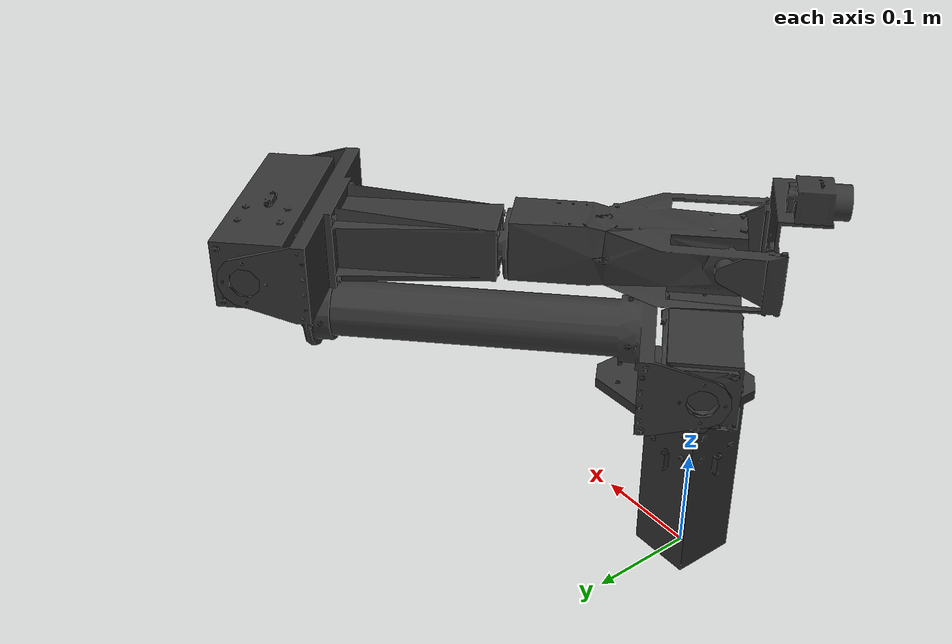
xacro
<?xml version="1.0" ?>
<robot name="hexapod_arm" xmlns:xacro="http://www.ros.org/wiki/xacro">

    <xacro:include filename="$(find arm_description)/urdf/arm.urdf.xacro" />

    <link name="base_link"/>

    <xacro:hexapod_arm parent="base_link" xyz="0 0 0" rpy="0 0 0"/>

    <!-- Fix to floor for gazebo testing -->
    <link name="world"/>
    <joint name="world_joint" type="fixed">
        <parent link="world"/>
        <child link="base_link"/>
        <origin xyz="0 0 0" rpy="0 0 0"/>
    </joint>

    <xacro:include filename="$(find arm_description)/urdf/arm.gazebo.xacro"/>

    <gazebo>
        <plugin name="ros_control" filename="libgazebo_ros_control.so">
          <robotNamespace></robotNamespace>
        </plugin>
    </gazebo>

</robot>

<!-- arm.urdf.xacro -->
<robot xmlns:xacro="http://www.ros.org/wiki/xacro">

    <!-- All meshes are scaled by 0.001 in all dimensions because I exported in mm, ROS uses m-->

    <xacro:macro name="hexapod_arm" params="parent xyz rpy">

        <joint name="arm_attachment" type="fixed">
            <parent link="${parent}"/>
            <child link="arm_link_1"/>
            <origin xyz="${xyz}" rpy="${rpy}"/>
        </joint>

        <link name="arm_link_1">
            <inertial>
                <origin xyz="0.0 0.0 0.0" rpy="0.0 0.0 0.0"/>
                <mass value="0.1"/>
                <inertia ixx="0.001" ixy="0.0" ixz="0.0" iyy="0.001" iyz="0.0" izz="0.001"/>
            </inertial>

            <visual>
                <origin xyz="0 0 0.0" rpy="0.0 0.0 0.0"/>
                <geometry>
                    <mesh filename="package://arm_description/meshes/visual/arm_link_1.stl" scale="0.001 0.001 0.001"/>
                </geometry>
                <material name="Grey">
                    <color rgba="0.2 0.2 0.2 1"/>
                </material>
            </visual>

            <collision>
                <origin xyz="0.0 0.0 0.0" rpy="0.0 0.0 0.0"/>
                <geometry>
                    <mesh filename="package://arm_description/meshes/collision/arm_link_1.stl" scale="0.001 0.001 0.001"/>
                </geometry>
            </collision>
        </link>

        <joint name="arm_joint_1" type="revolute">
            <parent link="arm_link_1"/>
            <child link="arm_link_2"/>
            <origin xyz="0.0 0.0 0.194" rpy="0.0 0.0 ${5*pi/4.0}"/>
            <axis xyz="0 0 1"/>
            <dynamics damping="0"/>
            <dynamics friction="0"/>
            <limit effort="87" velocity="5.6548668" lower="-2.6179939" upper="2.6179939" />
        </joint>

        <link name="arm_link_2">
            <inertial>
                <origin xyz="0.0 0.0 0.0" rpy="0.0 0.0 0.0"/>
                <mass value="0.1"/>
                <inertia ixx="0.001" ixy="0.0" ixz="0.0" iyy="0.001" iyz="0.0" izz="0.001"/>
            </inertial>

            <visual>
                <origin xyz="0.0 0.0 0.0" rpy="0.0 0.0 0.0"/>
                <geometry>
                    <mesh filename="package://arm_description/meshes/visual/arm_link_2.stl" scale="0.001 0.001 0.001"/>
                </geometry>
                <material name="Grey">
                    <color rgba="0.2 0.2 0.2 1"/>
                </material>
            </visual>

            <collision>
                <origin xyz="0.0 0.0 0.0" rpy="0.0 0.0 0.0"/>
                <geometry>
                    <mesh filename="package://arm_description/meshes/collision/arm_link_2.stl" scale="0.001 0.001 0.001"/>
                </geometry>
            </collision>
        </link>

        <joint name="arm_joint_2" type="revolute">
            <parent link="arm_link_2"/>
            <child link="arm_link_3"/>
            <origin xyz="0.0 0.0 0.04" rpy="0.0 0.0 0.0"/>
            <axis xyz="0 1 0"/>
            <dynamics damping="0"/>
            <dynamics friction="0"/>
            <limit effort="87" velocity="5.6548668" lower="-2.6179939" upper="2.6179939" />
        </joint>

        <link name="arm_link_3">
            <inertial>
                <origin xyz="0.0 0.0 0.0" rpy="0.0 0.0 0.0"/>
                <mass value="0.1"/>
                <inertia ixx="0.001" ixy="0.0" ixz="0.0" iyy="0.001" iyz="0.0" izz="0.001"/>
            </inertial>

            <visual>
                <origin xyz="0.0 0.0 0.0" rpy="0.0 0.0 ${pi/2.0}"/>
                <geometry>
                    <mesh filename="package://arm_description/meshes/visual/arm_link_3.stl" scale="0.001 0.001 0.001"/>
                </geometry>
                <material name="Grey">
                    <color rgba="0.2 0.2 0.2 1"/>
                </material>
            </visual>

            <collision>
                <origin xyz="0.0 0.0 0.0" rpy="0.0 0.0 ${pi/2}"/>
                <geometry>
                    <mesh filename="package://arm_description/meshes/collision/arm_link_3.stl" scale="0.001 0.001 0.001"/>
                </geometry>
            </collision>
        </link>

        <joint name="arm_joint_3" type="revolute">
            <parent link="arm_link_3"/>
            <child link="arm_link_4"/>
            <origin xyz="-0.3683 0.014 0.073" rpy="0.0 ${pi} 0.0"/>
            <axis xyz="0 1 0"/>
            <dynamics damping="0"/>
            <dynamics friction="0"/>
            <limit effort="87" velocity="5.6548668" lower="-2.6179939" upper="2.6179939" />
        </joint>

        <link name="arm_link_4">
            <inertial>
                <origin xyz="0.0 0.0 0.0" rpy="0.0 0.0 0.0"/>
                <mass value="0.1"/>
                <inertia ixx="0.001" ixy="0.0" ixz="0.0" iyy="0.001" iyz="0.0" izz="0.001"/>
            </inertial>

            <visual>
                <origin xyz="0.0 0.0 0.0" rpy="0.0 0.0 ${pi/2.0}"/>
                <geometry>
                    <mesh filename="package://arm_description/meshes/visual/arm_link_4.stl" scale="0.001 0.001 0.001"/>
                </geometry>
                <material name="Grey">
                    <color rgba="0.2 0.2 0.2 1"/>
                </material>
            </visual>

            <collision>
                <origin xyz="0.0 0.0 0.0" rpy="0.0 0.0 ${pi/2}"/>
                <geometry>
                    <mesh filename="package://arm_description/meshes/collision/arm_link_4.stl" scale="0.001 0.001 0.001"/>
                </geometry>
            </collision>
        </link>

        <joint name="arm_joint_4" type="revolute">
            <parent link="arm_link_4"/>
            <child link="arm_link_5"/>
            <origin xyz="-0.202 0.0 0.0" rpy="0.0 ${pi} 0.0"/>
            <axis xyz="1 0 0"/>
            <dynamics damping="0"/>
            <dynamics friction="0"/>
            <limit effort="87" velocity="5.6548668" lower="-2.6179939" upper="2.6179939" />
        </joint>

        <link name="arm_link_5">
            <inertial>
                <origin xyz="0.0 0.0 0.0" rpy="0.0 0.0 0.0"/>
                <mass value="0.1"/>
                <inertia ixx="0.001" ixy="0.0" ixz="0.0" iyy="0.001" iyz="0.0" izz="0.001"/>
            </inertial>

            <visual>
                <origin xyz="0.0 0.0 0.0" rpy="0.0 0.0 0.0"/>
                <geometry>
                    <mesh filename="package://arm_description/meshes/visual/arm_link_5.stl" scale="0.001 0.001 0.001"/>
                </geometry>
                <material name="Grey">
                    <color rgba="0.2 0.2 0.2 1"/>
                </material>
            </visual>

            <collision>
                <origin xyz="0.0 0.0 0.0" rpy="0.0 0.0 0.0"/>
                <geometry>
                    <mesh filename="package://arm_description/meshes/collision/arm_link_5.stl" scale="0.001 0.001 0.001"/>
                </geometry>
            </collision>
        </link>

        <joint name="arm_joint_5" type="revolute">
            <parent link="arm_link_5"/>
            <child link="arm_link_6"/>
            <origin xyz="0.17875 0.0 0.0" rpy="0.0 0.0 0.0"/>
            <axis xyz="0 1 0"/>
            <dynamics damping="0"/>
            <dynamics friction="0"/>
            <limit effort="87" velocity="5.6548668" lower="-2.6179939" upper="2.6179939" />
        </joint>

        <link name="arm_link_6">
            <inertial>
                <origin xyz="0.0 0.0 0.0" rpy="0.0 0.0 0.0"/>
                <mass value="0.1"/>
                <inertia ixx="0.001" ixy="0.0" ixz="0.0" iyy="0.001" iyz="0.0" izz="0.001"/>
            </inertial>

            <visual>
                <origin xyz="0.0 0.0 0.0" rpy="0.0 0.0 0.0"/>
                <geometry>
                    <mesh filename="package://arm_description/meshes/visual/arm_link_6.stl" scale="0.001 0.001 0.001"/>
                </geometry>
                <material name="Grey">
                    <color rgba="0.2 0.2 0.2 1"/>
                </material>
            </visual>

            <collision>
                <origin xyz="0.0 0.0 0.0" rpy="0.0 0.0 0.0"/>
                <geometry>
                    <mesh filename="package://arm_description/meshes/collision/arm_link_6.stl" scale="0.001 0.001 0.001"/>
                </geometry>
            </collision>
        </link>

        <joint name="arm_camera_attachment" type="fixed">
            <parent link="arm_link_6"/>
            <child link="arm_camera_link"/>
            <origin xyz="0.09 -0.025 0.065" rpy="0.0 0.0 0.0"/>
        </joint>

        <link name="arm_camera_link">
            <inertial>
                <origin xyz="0.0 0.0 0.0" rpy="0.0 0.0 0.0"/>
                <mass value="0.1"/>
                <inertia ixx="0.001" ixy="0.0" ixz="0.0" iyy="0.001" iyz="0.0" izz="0.001"/>
            </inertial>

            <visual>
                <origin xyz="0.0 0.0 0.0" rpy="0.0 0.0 0.0"/>
                <geometry>
                    <mesh filename="package://arm_description/meshes/visual/arm_camera.stl" scale="0.001 0.001 0.001"/>
                </geometry>
                <material name="Grey">
                    <color rgba="0.2 0.2 0.2 1"/>
                </material>
            </visual>

            <collision>
                <origin xyz="0.0 0.0 0.0" rpy="0.0 0.0 0.0"/>
                <geometry>
                    <mesh filename="package://arm_description/meshes/collision/arm_camera.stl" scale="0.001 0.001 0.001"/>
                </geometry>
            </collision>
        </link>

        <xacro:include filename="$(find arm_description)/urdf/arm.transmission.xacro"/>

    </xacro:macro>

</robot>
